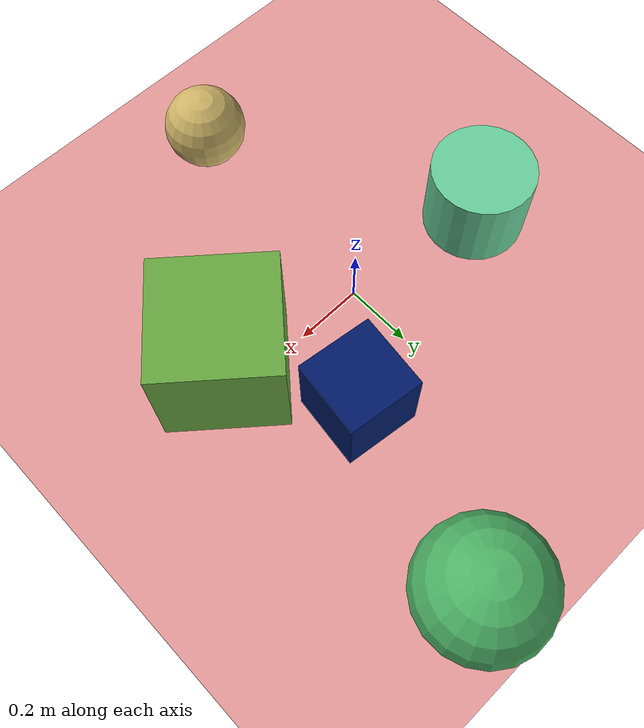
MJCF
<mujoco>
   <asset>
<texture type="skybox" builtin="gradient" rgb1="1.0 0.6 0.3" rgb2="0.3 0.4 0.5" width="500" height="500"/>
<texture name="flat_0" builtin="flat" rgb1="0.4 0.8 0.6" rgb2="0.4 0.8 0.6"  width="500" height="500"/>
<texture name="gradient_1" builtin="gradient" rgb1="0.8 0.7 0.3" rgb2="0.8 0.7 0.5" width="500" height="500"/>
<texture name="flat_2" builtin="flat" rgb1="0.0 0.1 0.4" rgb2="0.0 0.1 0.4"  width="500" height="500"/>
<texture name="gradient_3" builtin="gradient" rgb1="0.5 0.5 0.4" rgb2="0.3 0.8 0.1" width="500" height="500"/>
<texture name="gradient_4" builtin="gradient" rgb1="0.5 0.7 0.2" rgb2="0.1 0.7 0.6" width="500" height="500"/><material name="flat_0_mat" reflectance="0.7103259090829784" texture="flat_0" texuniform="true"/>
<material name="gradient_1_mat" reflectance="0.7350877473480528" texture="gradient_1" texuniform="true"/>
<material name="flat_2_mat" reflectance="0.9975092938263128" texture="flat_2" texuniform="true"/>
<material name="gradient_3_mat" reflectance="0.6783896391207282" texture="gradient_3" texuniform="true"/>
<material name="gradient_4_mat" reflectance="0.15620375411363796" texture="gradient_4" texuniform="true"/>
   </asset>

   <worldbody>
     <geom type="plane" size="1 1 0.1" rgba="0.9 0.6 0.6 1" />
<light pos="0.00013330032566116756 0.9522049643318817 2" dir="0 0 -1" cutoff="90" diffuse="1 1 1" specular="1 1 1"/>
<light pos="0.5593388686439777 0.9270416386470923 2" dir="0 0 -1" cutoff="90" diffuse="1 1 1" specular="1 1 1"/>
<geom type="cylinder" pos="-0.44 0.06 0.12" size="0.15 0.12 0.12" material="flat_0_mat" euler="0 0 25" />
<geom type="sphere" pos="-0.03 -0.67 0.12" size="0.12 0.12 0.12" material="gradient_1_mat" euler="0 0 69" />
<geom type="box" pos="0.24 0.26 0.12" size="0.11 0.11 0.12" material="flat_2_mat" euler="0 0 83" />
<geom type="box" pos="0.42 -0.07 0.17" size="0.17 0.17 0.17" material="gradient_3_mat" euler="0 0 50" />
<geom type="sphere" pos="0.39 0.82 0.18" size="0.18 0.18 0.18" material="gradient_4_mat" euler="0 0 10" /><camera euler="60 0 180" fovy="60" name="camera1" pos="-0.2 -1.5 1"></camera>   </worldbody>
   <visual>
      <headlight diffuse="0.7 0.7 0.7"/>
   </visual>
</mujoco>
